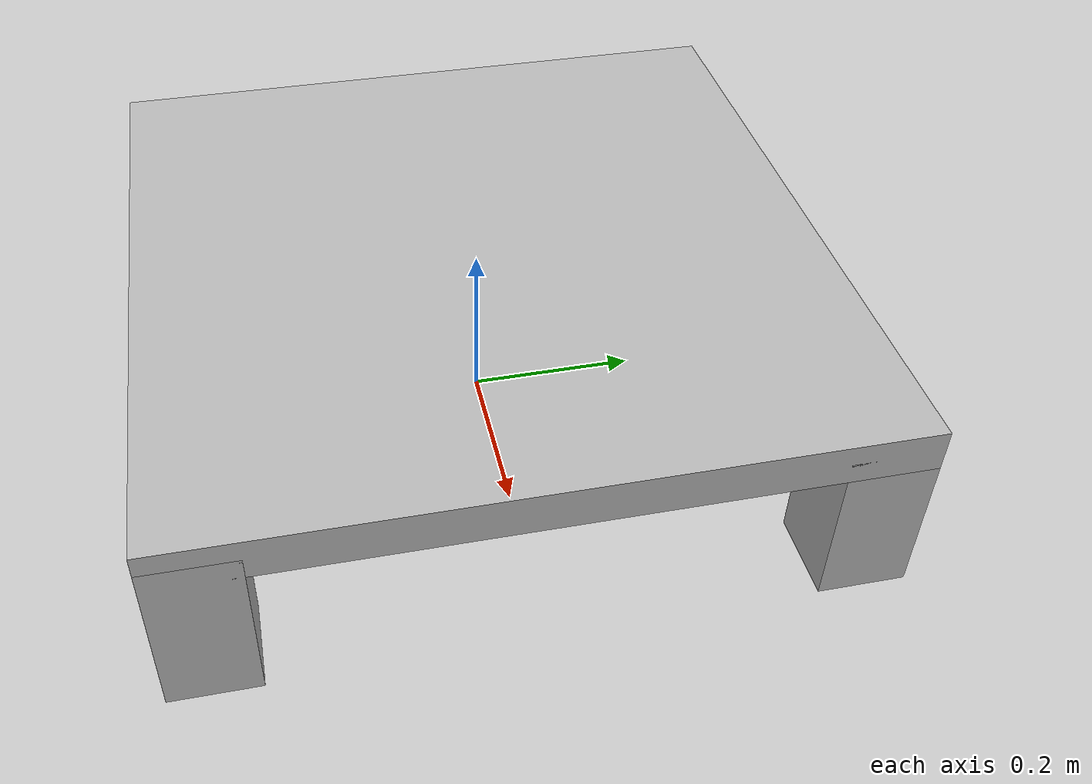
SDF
<?xml version="1.0" ?>
<sdf version="1.6">
<!-- shelf model -->
		<model name="shelf">
			<link name='body'>
           		<pose>0 0 0.2 0 0 0</pose>
		        <collision name='collision'>
		         	<geometry>
		           		<box>
		              		<size>.8 .8 .05</size>
		            		</box>
		          	</geometry>
		        	</collision>

		        <visual name='visual'>
		        		<geometry>
		            		<box>
		              		<size>.8 .8 .05</size>
		            		</box>
		          	</geometry>
		        </visual>
			</link>
			<link name="leg_1">
            <pose>0.35 0.35 0.1 0 0 0</pose>
		        <collision name='collision'>
		         	<geometry>
		           		<box>
		              		<size>.1 .1 0.20</size>
		            		</box>
		          	</geometry>
		        	</collision>
		        <visual name='visual'>
		        		<geometry>
		            		<box>
		              		<size>.1 .1 0.20</size>
		            		</box>
		          	</geometry>
		        </visual>
			</link>
            <link name="leg_2">
            <pose>-0.35 0.35 0.1 0 0 0</pose>
		        <collision name='collision'>
		         	<geometry>
		           		<box>
		              		<size>.1 .1 0.20</size>
		            		</box>
		          	</geometry>
		        	</collision>

		        <visual name='visual'>
		        		<geometry>
		            		<box>
		              		<size>.1 .1 0.20</size>
		            		</box>
		          	</geometry>
		        </visual>
			</link>
            <link name="leg_3">
            <pose>0.35 -0.35 0.1 0 0 0</pose>
		        <collision name='collision'>
		         	<geometry>
		           		<box>
		              		<size>.1 .1 0.20</size>
		            		</box>
		          	</geometry>
		        	</collision>
		        <visual name='visual'>
		        		<geometry>
		            		<box>
		              		<size>.1 .1 0.20</size>
		            		</box>
		          	</geometry>
		        </visual>
			</link>
            <link name="leg_4">
            <pose>-0.35 -0.35 0.1 0 0 0</pose>
		        <collision name='collision'>
		         	<geometry>
		           		<box>
		              		<size>.1 .1 0.20</size>
		            		</box>
		          	</geometry>
		        	</collision>
		        <visual name='visual'>
		        		<geometry>
		            		<box>
		              		<size>.1 .1 0.20</size>
		            		</box>
		          	</geometry>
		        </visual>
			</link>
            <joint type="fixed" name="leg_1_joint">
        			<pose>0 0 0 0 0 0</pose>
        			<child>leg_1</child>
        			<parent>body</parent>
                </joint>
                <joint type="fixed" name="leg_2_joint">
        			<pose>0 0 0 0 0 0</pose>
        			<child>leg_2</child>
        			<parent>body</parent>
                </joint>
                <joint type="fixed" name="leg_3_joint">
        			<pose>0 0 0 0 0 0</pose>
        			<child>leg_3</child>
        			<parent>body</parent>
                </joint>
                <joint type="fixed" name="leg_4_joint">
        			<pose>0 0 0 0 0 0</pose>
        			<child>leg_4</child>
        			<parent>body</parent>
                </joint>
</model>

</sdf>
